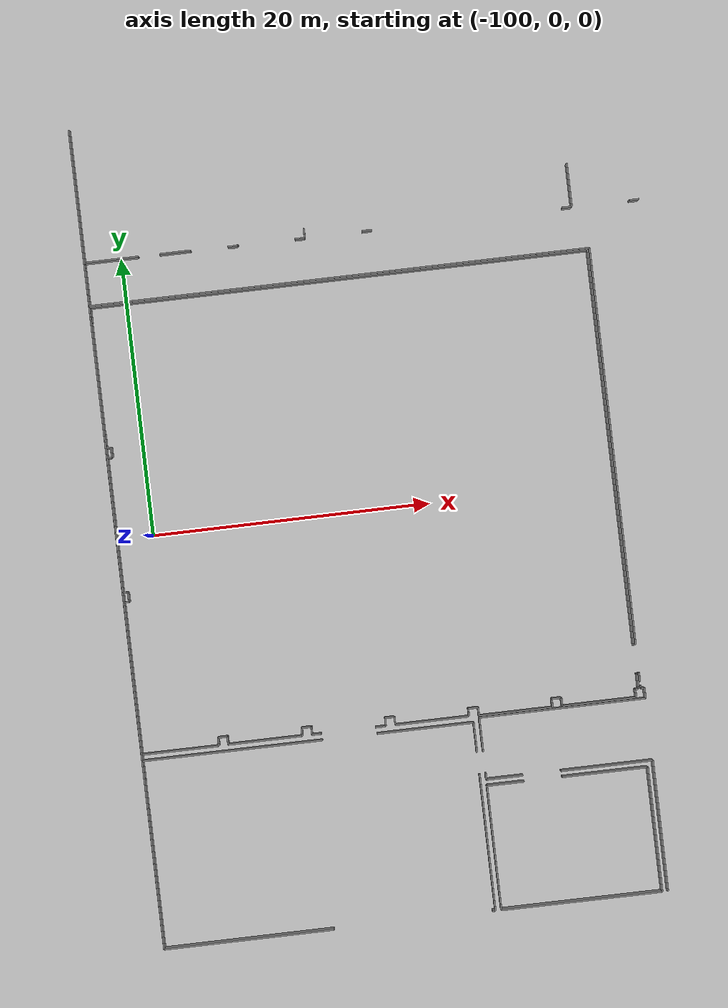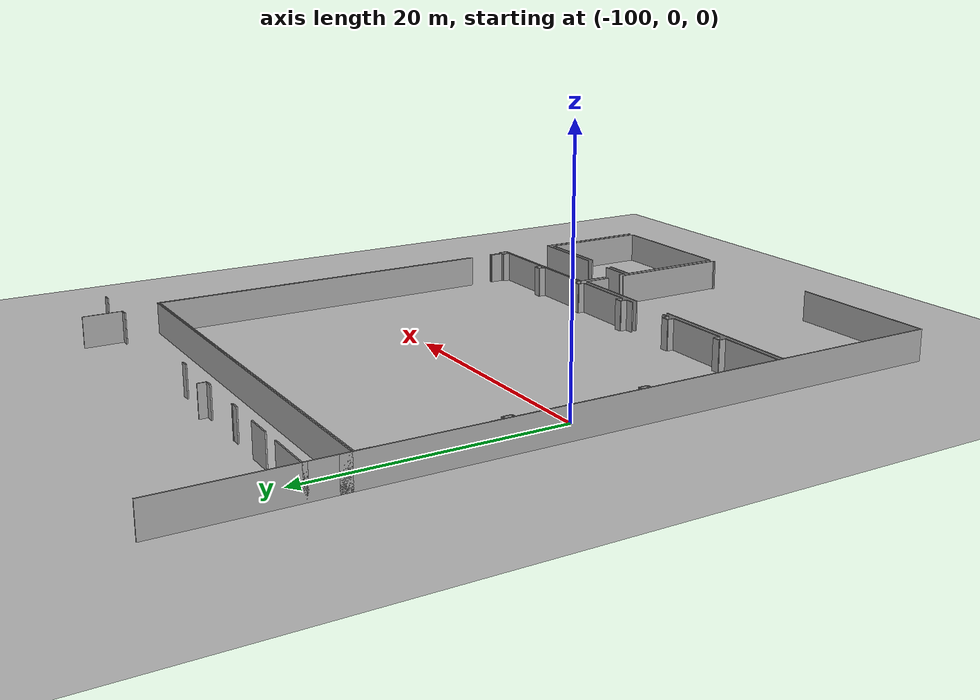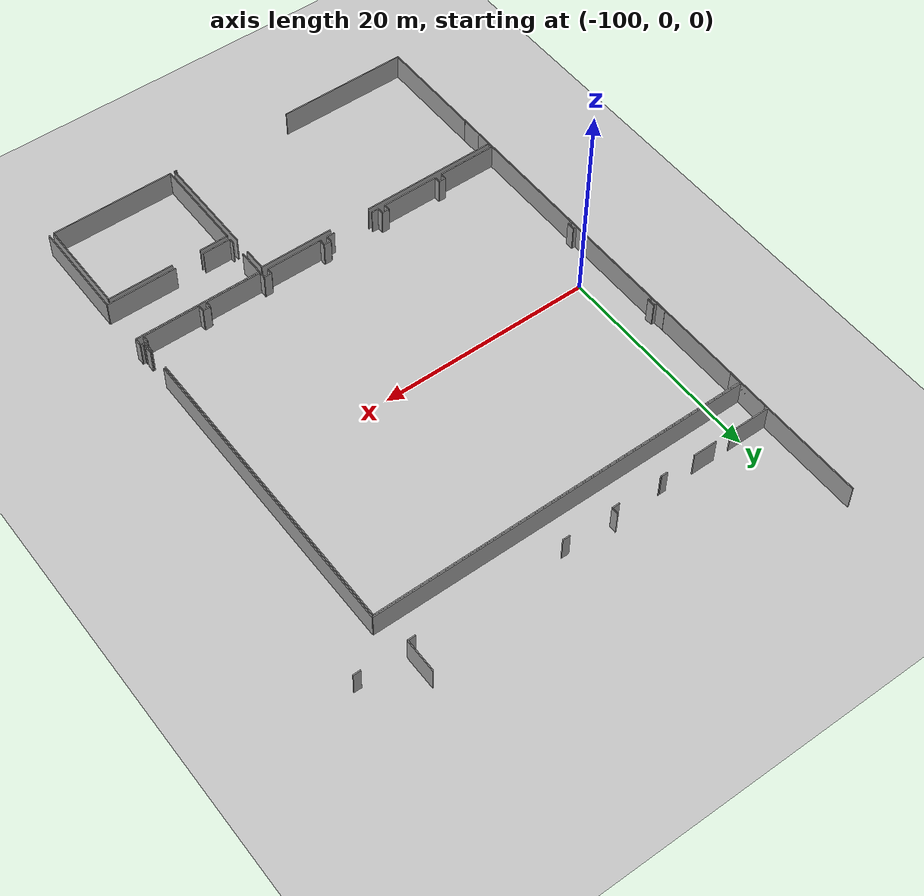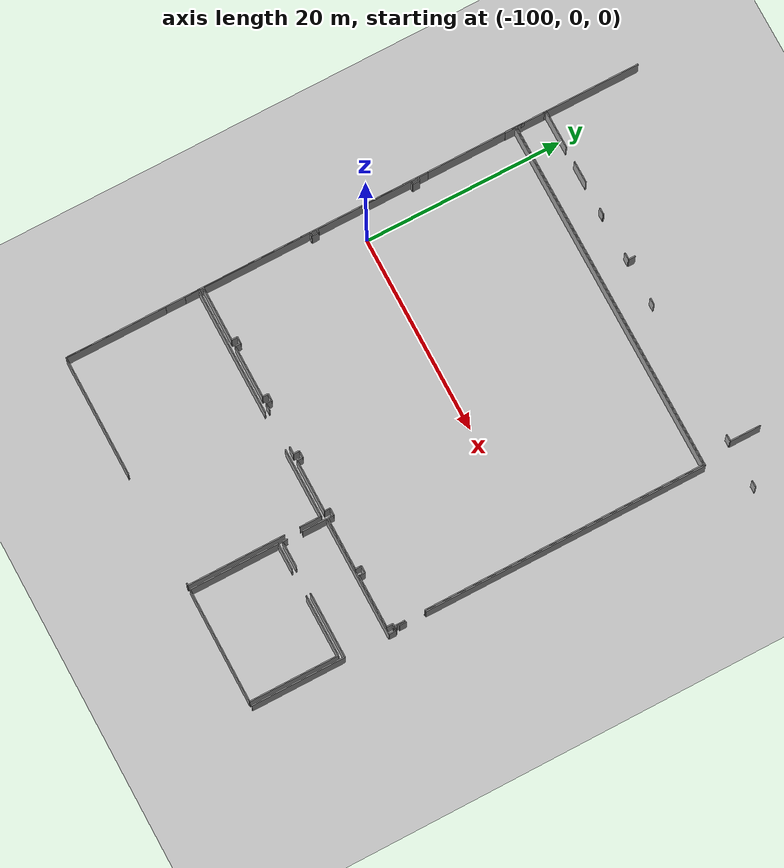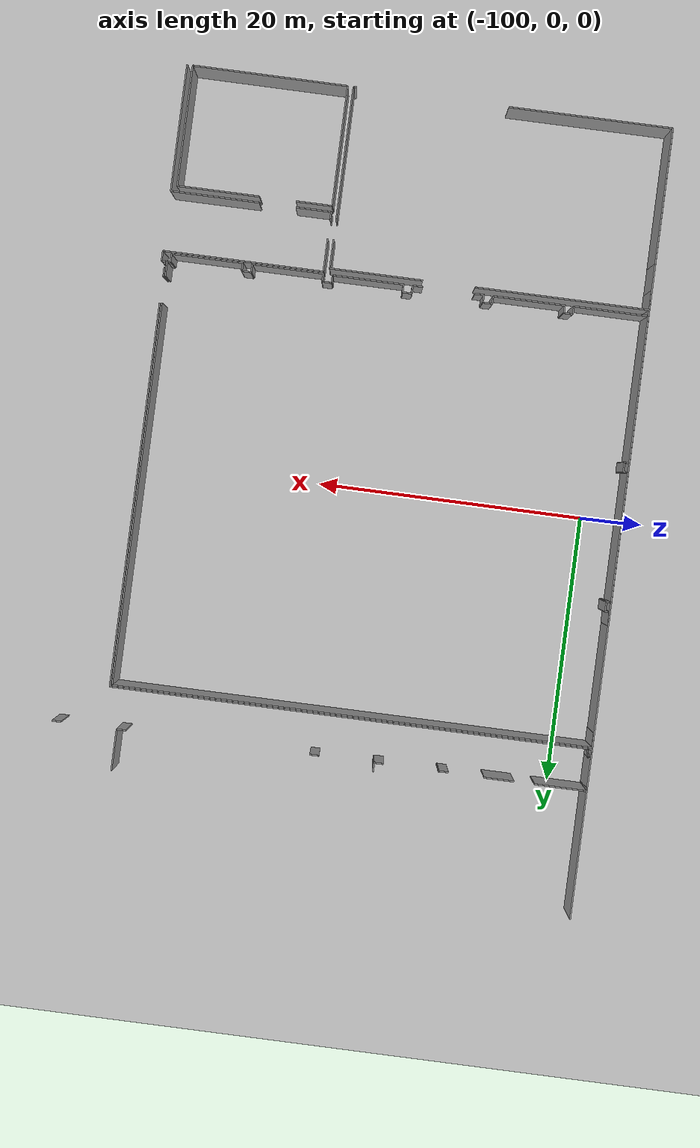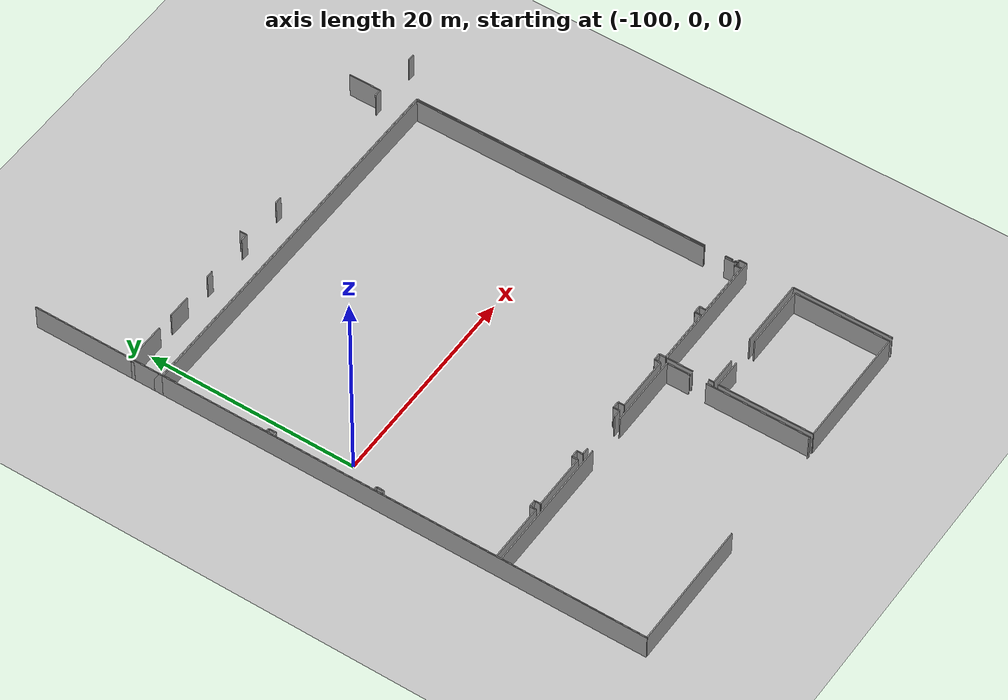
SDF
<sdf version="1.6">
 <world name="default">
  <model name="ground_plane">
   <static>1</static>
   <link name="link">
    <collision name="collision">
     <geometry><plane><normal>0 0 1</normal><size>100 100</size></plane></geometry>
     <surface><friction><ode><mu>100</mu><mu2>50</mu2></ode></friction></surface>
    </collision>
    <visual name="visual">
     <cast_shadows>0</cast_shadows>
     <geometry><plane><normal>0 0 1</normal><size>100 100</size></plane></geometry>
     <material>
      <script><uri>file://media/materials/scripts/gazebo.material</uri><name>Gazebo/Grey</name></script>
     </material>
    </visual>
   </link>
  </model>
  <model name="50010535_PLAN1">
   <static>1</static>
   <link name="Wall_73">
    <collision name="Wall_73_Collision">
     <geometry><box><size>0.842931837386 0.1 2.5</size></box></geometry>
     <pose>0.421465918693 0 1.25 0 0 0</pose>
    </collision>
    <visual name="Wall_73_Visual">
     <pose>0.421465918693 0 1.25 0 0 0</pose>
     <geometry><box><size>0.842931837386 0.1 2.5</size></box></geometry>
     <material>
      <script><uri>file://media/materials/scripts/gazebo.material</uri><name>Gazebo/Grey</name></script>
      <ambient>1 1 1 1</ambient>
     </material>
    </visual>
    <pose>0.0 -12.6818421504 0 0 0 1.57079632679</pose>
   </link>
   <link name="Wall_74">
    <collision name="Wall_74_Collision">
     <geometry><box><size>0.332903438943 0.1 2.5</size></box></geometry>
     <pose>0.166451719472 0 1.25 0 0 0</pose>
    </collision>
    <visual name="Wall_74_Visual">
     <pose>0.166451719472 0 1.25 0 0 0</pose>
     <geometry><box><size>0.332903438943 0.1 2.5</size></box></geometry>
     <material>
      <script><uri>file://media/materials/scripts/gazebo.material</uri><name>Gazebo/Grey</name></script>
      <ambient>1 1 1 1</ambient>
     </material>
    </visual>
    <pose>0.0 -9.90146312332 0 0 0 1.57079632679</pose>
   </link>
   <link name="Wall_75">
    <collision name="Wall_75_Collision">
     <geometry><box><size>3.89014186515 0.1 2.5</size></box></geometry>
     <pose>1.94507093257 0 1.25 0 0 0</pose>
    </collision>
    <visual name="Wall_75_Visual">
     <pose>1.94507093257 0 1.25 0 0 0</pose>
     <geometry><box><size>3.89014186515 0.1 2.5</size></box></geometry>
     <material>
      <script><uri>file://media/materials/scripts/gazebo.material</uri><name>Gazebo/Grey</name></script>
      <ambient>1 1 1 1</ambient>
     </material>
    </visual>
    <pose>0.0 -9.56855968438 0 0 0 0.0</pose>
   </link>
   <link name="Wall_76">
    <collision name="Wall_76_Collision">
     <geometry><box><size>2.23858503332 0.1 2.5</size></box></geometry>
     <pose>1.11929251666 0 1.25 0 0 0</pose>
    </collision>
    <visual name="Wall_76_Visual">
     <pose>1.11929251666 0 1.25 0 0 0</pose>
     <geometry><box><size>2.23858503332 0.1 2.5</size></box></geometry>
     <material>
      <script><uri>file://media/materials/scripts/gazebo.material</uri><name>Gazebo/Grey</name></script>
      <ambient>1 1 1 1</ambient>
     </material>
    </visual>
    <pose>5.4187023119 -9.56855968438 0 0 0 0.0</pose>
   </link>
   <link name="Wall_79">
    <collision name="Wall_79_Collision">
     <geometry><box><size>0.702909093219 0.1 2.5</size></box></geometry>
     <pose>0.35145454661 0 1.25 0 0 0</pose>
    </collision>
    <visual name="Wall_79_Visual">
     <pose>0.35145454661 0 1.25 0 0 0</pose>
     <geometry><box><size>0.702909093219 0.1 2.5</size></box></geometry>
     <material>
      <script><uri>file://media/materials/scripts/gazebo.material</uri><name>Gazebo/Grey</name></script>
      <ambient>1 1 1 1</ambient>
     </material>
    </visual>
    <pose>10.330933972 -9.61353976735 0 0 0 0.0</pose>
   </link>
   <link name="Wall_80">
    <collision name="Wall_80_Collision">
     <geometry><box><size>0.0853859202175 0.1 2.5</size></box></geometry>
     <pose>0.0426929601088 0 1.25 0 0 0</pose>
    </collision>
    <visual name="Wall_80_Visual">
     <pose>0.0426929601088 0 1.25 0 0 0</pose>
     <geometry><box><size>0.0853859202175 0.1 2.5</size></box></geometry>
     <material>
      <script><uri>file://media/materials/scripts/gazebo.material</uri><name>Gazebo/Grey</name></script>
      <ambient>1 1 1 1</ambient>
     </material>
    </visual>
    <pose>11.0338430653 -9.61353976735 0 0 0 1.57079632679</pose>
   </link>
   <link name="Wall_84">
    <collision name="Wall_84_Collision">
     <geometry><box><size>0.714344707534 0.1 2.5</size></box></geometry>
     <pose>0.357172353767 0 1.25 0 0 0</pose>
    </collision>
    <visual name="Wall_84_Visual">
     <pose>0.357172353767 0 1.25 0 0 0</pose>
     <geometry><box><size>0.714344707534 0.1 2.5</size></box></geometry>
     <material>
      <script><uri>file://media/materials/scripts/gazebo.material</uri><name>Gazebo/Grey</name></script>
      <ambient>1 1 1 1</ambient>
     </material>
    </visual>
    <pose>15.1455817233 -9.61201501877 0 0 0 0.0</pose>
   </link>
   <link name="Wall_85">
    <collision name="Wall_85_Collision">
     <geometry><box><size>0.682324987453 0.1 2.5</size></box></geometry>
     <pose>0.341162493726 0 1.25 0 0 0</pose>
    </collision>
    <visual name="Wall_85_Visual">
     <pose>0.341162493726 0 1.25 0 0 0</pose>
     <geometry><box><size>0.682324987453 0.1 2.5</size></box></geometry>
     <material>
      <script><uri>file://media/materials/scripts/gazebo.material</uri><name>Gazebo/Grey</name></script>
      <ambient>1 1 1 1</ambient>
     </material>
    </visual>
    <pose>15.8599264309 -9.61201501877 0 0 0 1.57079632679</pose>
   </link>
   <link name="Wall_93">
    <collision name="Wall_93_Collision">
     <geometry><box><size>0.707737463708 0.1 2.5</size></box></geometry>
     <pose>0.353868731854 0 1.25 0 0 0</pose>
    </collision>
    <visual name="Wall_93_Visual">
     <pose>0.353868731854 0 1.25 0 0 0</pose>
     <geometry><box><size>0.707737463708 0.1 2.5</size></box></geometry>
     <material>
      <script><uri>file://media/materials/scripts/gazebo.material</uri><name>Gazebo/Grey</name></script>
      <ambient>1 1 1 1</ambient>
     </material>
    </visual>
    <pose>19.9729357128 -9.59930878065 0 0 0 0.0</pose>
   </link>
   <link name="Wall_94">
    <collision name="Wall_94_Collision">
     <geometry><box><size>0.698334847493 0.1 2.5</size></box></geometry>
     <pose>0.349167423747 0 1.25 0 0 0</pose>
    </collision>
    <visual name="Wall_94_Visual">
     <pose>0.349167423747 0 1.25 0 0 0</pose>
     <geometry><box><size>0.698334847493 0.1 2.5</size></box></geometry>
     <material>
      <script><uri>file://media/materials/scripts/gazebo.material</uri><name>Gazebo/Grey</name></script>
      <ambient>1 1 1 1</ambient>
     </material>
    </visual>
    <pose>34.3693576361 -9.59930878065 0 0 0 0.0</pose>
   </link>
   <link name="Wall_95">
    <collision name="Wall_95_Collision">
     <geometry><box><size>3.1087082203 0.1 2.5</size></box></geometry>
     <pose>1.55435411015 0 1.25 0 0 0</pose>
    </collision>
    <visual name="Wall_95_Visual">
     <pose>1.55435411015 0 1.25 0 0 0</pose>
     <geometry><box><size>3.1087082203 0.1 2.5</size></box></geometry>
     <material>
      <script><uri>file://media/materials/scripts/gazebo.material</uri><name>Gazebo/Grey</name></script>
      <ambient>1 1 1 1</ambient>
     </material>
    </visual>
    <pose>35.0676924836 -9.59930878065 0 0 0 1.57079632679</pose>
   </link>
   <link name="Wall_102">
    <collision name="Wall_102_Collision">
     <geometry><box><size>0.685628609366 0.1 2.5</size></box></geometry>
     <pose>0.342814304683 0 1.25 0 0 0</pose>
    </collision>
    <visual name="Wall_102_Visual">
     <pose>0.342814304683 0 1.25 0 0 0</pose>
     <geometry><box><size>0.685628609366 0.1 2.5</size></box></geometry>
     <material>
      <script><uri>file://media/materials/scripts/gazebo.material</uri><name>Gazebo/Grey</name></script>
      <ambient>1 1 1 1</ambient>
     </material>
    </visual>
    <pose>39.2040812437 -9.62446713214 0 0 0 0.0</pose>
   </link>
   <link name="Wall_116">
    <collision name="Wall_116_Collision">
     <geometry><box><size>0.695285350343 0.1 2.5</size></box></geometry>
     <pose>0.347642675171 0 1.25 0 0 0</pose>
    </collision>
    <visual name="Wall_116_Visual">
     <pose>0.347642675171 0 1.25 0 0 0</pose>
     <geometry><box><size>0.695285350343 0.1 2.5</size></box></geometry>
     <material>
      <script><uri>file://media/materials/scripts/gazebo.material</uri><name>Gazebo/Grey</name></script>
      <ambient>1 1 1 1</ambient>
     </material>
    </visual>
    <pose>35.9784756326 -43.9414750672 0 0 0 1.57079632679</pose>
   </link>
   <link name="Wall_117">
    <collision name="Wall_117_Collision">
     <geometry><box><size>28.5745506757 0.1 2.5</size></box></geometry>
     <pose>14.2872753378 0 1.25 0 0 0</pose>
    </collision>
    <visual name="Wall_117_Visual">
     <pose>14.2872753378 0 1.25 0 0 0</pose>
     <geometry><box><size>28.5745506757 0.1 2.5</size></box></geometry>
     <material>
      <script><uri>file://media/materials/scripts/gazebo.material</uri><name>Gazebo/Grey</name></script>
      <ambient>1 1 1 1</ambient>
     </material>
    </visual>
    <pose>35.9784756326 -41.2518185803 0 0 0 1.57079632679</pose>
   </link>
   <link name="Wall_118">
    <collision name="Wall_118_Collision">
     <geometry><box><size>35.9784759234 0.1 2.5</size></box></geometry>
     <pose>17.9892379617 0 1.25 0 0 0</pose>
    </collision>
    <visual name="Wall_118_Visual">
     <pose>17.9892379617 0 1.25 0 0 0</pose>
     <geometry><box><size>35.9784759234 0.1 2.5</size></box></geometry>
     <material>
      <script><uri>file://media/materials/scripts/gazebo.material</uri><name>Gazebo/Grey</name></script>
      <ambient>1 1 1 1</ambient>
     </material>
    </visual>
    <pose>35.9784756326 -12.6772679047 0 0 0 -3.14146551519</pose>
   </link>
   <link name="Wall_119">
    <collision name="Wall_119_Collision">
     <geometry><box><size>10.9456617726 0.1 2.5</size></box></geometry>
     <pose>5.47283088632 0 1.25 0 0 0</pose>
    </collision>
    <visual name="Wall_119_Visual">
     <pose>5.47283088632 0 1.25 0 0 0</pose>
     <geometry><box><size>10.9456617726 0.1 2.5</size></box></geometry>
     <material>
      <script><uri>file://media/materials/scripts/gazebo.material</uri><name>Gazebo/Grey</name></script>
      <ambient>1 1 1 1</ambient>
     </material>
    </visual>
    <pose>0.0152474857531 -44.9716968546 0 0 0 1.57079632679</pose>
   </link>
   <link name="Wall_120">
    <collision name="Wall_120_Collision">
     <geometry><box><size>0.356282917098 0.1 2.5</size></box></geometry>
     <pose>0.178141458549 0 1.25 0 0 0</pose>
    </collision>
    <visual name="Wall_120_Visual">
     <pose>0.178141458549 0 1.25 0 0 0</pose>
     <geometry><box><size>0.356282917098 0.1 2.5</size></box></geometry>
     <material>
      <script><uri>file://media/materials/scripts/gazebo.material</uri><name>Gazebo/Grey</name></script>
      <ambient>1 1 1 1</ambient>
     </material>
    </visual>
    <pose>0.0152474857531 -34.0260350819 0 0 0 0.0</pose>
   </link>
   <link name="Wall_121">
    <collision name="Wall_121_Collision">
     <geometry><box><size>0.706466839895 0.1 2.5</size></box></geometry>
     <pose>0.353233419948 0 1.25 0 0 0</pose>
    </collision>
    <visual name="Wall_121_Visual">
     <pose>0.353233419948 0 1.25 0 0 0</pose>
     <geometry><box><size>0.706466839895 0.1 2.5</size></box></geometry>
     <material>
      <script><uri>file://media/materials/scripts/gazebo.material</uri><name>Gazebo/Grey</name></script>
      <ambient>1 1 1 1</ambient>
     </material>
    </visual>
    <pose>0.371530402851 -34.0260350819 0 0 0 1.57079632679</pose>
   </link>
   <link name="Wall_122">
    <collision name="Wall_122_Collision">
     <geometry><box><size>0.355012293285 0.1 2.5</size></box></geometry>
     <pose>0.177506146643 0 1.25 0 0 0</pose>
    </collision>
    <visual name="Wall_122_Visual">
     <pose>0.177506146643 0 1.25 0 0 0</pose>
     <geometry><box><size>0.355012293285 0.1 2.5</size></box></geometry>
     <material>
      <script><uri>file://media/materials/scripts/gazebo.material</uri><name>Gazebo/Grey</name></script>
      <ambient>1 1 1 1</ambient>
     </material>
    </visual>
    <pose>0.371530402851 -33.319568242 0 0 0 3.14159265359</pose>
   </link>
   <link name="Wall_123">
    <collision name="Wall_123_Collision">
     <geometry><box><size>9.69358906755 0.1 2.5</size></box></geometry>
     <pose>4.84679453378 0 1.25 0 0 0</pose>
    </collision>
    <visual name="Wall_123_Visual">
     <pose>4.84679453378 0 1.25 0 0 0</pose>
     <geometry><box><size>9.69358906755 0.1 2.5</size></box></geometry>
     <material>
      <script><uri>file://media/materials/scripts/gazebo.material</uri><name>Gazebo/Grey</name></script>
      <ambient>1 1 1 1</ambient>
     </material>
    </visual>
    <pose>0.0165181095659 -33.319568242 0 0 0 1.57079632679</pose>
   </link>
   <link name="Wall_124">
    <collision name="Wall_124_Collision">
     <geometry><box><size>0.350946297085 0.1 2.5</size></box></geometry>
     <pose>0.175473148542 0 1.25 0 0 0</pose>
    </collision>
    <visual name="Wall_124_Visual">
     <pose>0.175473148542 0 1.25 0 0 0</pose>
     <geometry><box><size>0.350946297085 0.1 2.5</size></box></geometry>
     <material>
      <script><uri>file://media/materials/scripts/gazebo.material</uri><name>Gazebo/Grey</name></script>
      <ambient>1 1 1 1</ambient>
     </material>
    </visual>
    <pose>0.0165181095659 -23.6259791745 0 0 0 0.0</pose>
   </link>
   <link name="Wall_125">
    <collision name="Wall_125_Collision">
     <geometry><box><size>0.726034446612 0.1 2.5</size></box></geometry>
     <pose>0.363017223306 0 1.25 0 0 0</pose>
    </collision>
    <visual name="Wall_125_Visual">
     <pose>0.363017223306 0 1.25 0 0 0</pose>
     <geometry><box><size>0.726034446612 0.1 2.5</size></box></geometry>
     <material>
      <script><uri>file://media/materials/scripts/gazebo.material</uri><name>Gazebo/Grey</name></script>
      <ambient>1 1 1 1</ambient>
     </material>
    </visual>
    <pose>0.36746440665 -23.6259791745 0 0 0 1.57079632679</pose>
   </link>
   <link name="Wall_126">
    <collision name="Wall_126_Collision">
     <geometry><box><size>0.340273057057 0.1 2.5</size></box></geometry>
     <pose>0.170136528529 0 1.25 0 0 0</pose>
    </collision>
    <visual name="Wall_126_Visual">
     <pose>0.170136528529 0 1.25 0 0 0</pose>
     <geometry><box><size>0.340273057057 0.1 2.5</size></box></geometry>
     <material>
      <script><uri>file://media/materials/scripts/gazebo.material</uri><name>Gazebo/Grey</name></script>
      <ambient>1 1 1 1</ambient>
     </material>
    </visual>
    <pose>0.36746440665 -22.8999447279 0 0 0 3.14159265359</pose>
   </link>
   <link name="Wall_127">
    <collision name="Wall_127_Collision">
     <geometry><box><size>1.00912943209 0.1 2.5</size></box></geometry>
     <pose>0.504564716047 0 1.25 0 0 0</pose>
    </collision>
    <visual name="Wall_127_Visual">
     <pose>0.504564716047 0 1.25 0 0 0</pose>
     <geometry><box><size>1.00912943209 0.1 2.5</size></box></geometry>
     <material>
      <script><uri>file://media/materials/scripts/gazebo.material</uri><name>Gazebo/Grey</name></script>
      <ambient>1 1 1 1</ambient>
     </material>
    </visual>
    <pose>0.0271913495931 -22.8999447279 0 0 0 1.57079632679</pose>
   </link>
   <link name="Wall_128">
    <collision name="Wall_128_Collision">
     <geometry><box><size>1.09222822945 0.1 2.5</size></box></geometry>
     <pose>0.546114114725 0 1.25 0 0 0</pose>
    </collision>
    <visual name="Wall_128_Visual">
     <pose>0.546114114725 0 1.25 0 0 0</pose>
     <geometry><box><size>1.09222822945 0.1 2.5</size></box></geometry>
     <material>
      <script><uri>file://media/materials/scripts/gazebo.material</uri><name>Gazebo/Grey</name></script>
      <ambient>1 1 1 1</ambient>
     </material>
    </visual>
    <pose>0.0271913495931 -13.8820734039 0 0 0 1.57079632679</pose>
   </link>
   <link name="Wall_129">
    <collision name="Wall_129_Collision">
     <geometry><box><size>35.8077037922 0.1 2.5</size></box></geometry>
     <pose>17.9038518961 0 1.25 0 0 0</pose>
    </collision>
    <visual name="Wall_129_Visual">
     <pose>17.9038518961 0 1.25 0 0 0</pose>
     <geometry><box><size>35.8077037922 0.1 2.5</size></box></geometry>
     <material>
      <script><uri>file://media/materials/scripts/gazebo.material</uri><name>Gazebo/Grey</name></script>
      <ambient>1 1 1 1</ambient>
     </material>
    </visual>
    <pose>0.0271913495931 -12.7898451745 0 0 0 0.0</pose>
   </link>
   <link name="Wall_130">
    <collision name="Wall_130_Collision">
     <geometry><box><size>28.5072076136 0.1 2.5</size></box></geometry>
     <pose>14.2536038068 0 1.25 0 0 0</pose>
    </collision>
    <visual name="Wall_130_Visual">
     <pose>14.2536038068 0 1.25 0 0 0</pose>
     <geometry><box><size>28.5072076136 0.1 2.5</size></box></geometry>
     <material>
      <script><uri>file://media/materials/scripts/gazebo.material</uri><name>Gazebo/Grey</name></script>
      <ambient>1 1 1 1</ambient>
     </material>
    </visual>
    <pose>35.8348951418 -12.7898451745 0 0 0 -1.57079632679</pose>
   </link>
   <link name="Wall_131">
    <collision name="Wall_131_Collision">
     <geometry><box><size>1.1074757152 0.1 2.5</size></box></geometry>
     <pose>0.553737857601 0 1.25 0 0 0</pose>
    </collision>
    <visual name="Wall_131_Visual">
     <pose>0.553737857601 0 1.25 0 0 0</pose>
     <geometry><box><size>1.1074757152 0.1 2.5</size></box></geometry>
     <material>
      <script><uri>file://media/materials/scripts/gazebo.material</uri><name>Gazebo/Grey</name></script>
      <ambient>1 1 1 1</ambient>
     </material>
    </visual>
    <pose>35.8348951418 -43.2817671836 0 0 0 -1.57079632679</pose>
   </link>
   <link name="Wall_132">
    <collision name="Wall_132_Collision">
     <geometry><box><size>0.251075265402 0.1 2.5</size></box></geometry>
     <pose>0.125537632701 0 1.25 0 0 0</pose>
    </collision>
    <visual name="Wall_132_Visual">
     <pose>0.125537632701 0 1.25 0 0 0</pose>
     <geometry><box><size>0.251075265402 0.1 2.5</size></box></geometry>
     <material>
      <script><uri>file://media/materials/scripts/gazebo.material</uri><name>Gazebo/Grey</name></script>
      <ambient>1 1 1 1</ambient>
     </material>
    </visual>
    <pose>35.8348951418 -44.3892428988 0 0 0 3.14159265359</pose>
   </link>
   <link name="Wall_133">
    <collision name="Wall_133_Collision">
     <geometry><box><size>0.613711301563 0.1 2.5</size></box></geometry>
     <pose>0.306855650782 0 1.25 0 0 0</pose>
    </collision>
    <visual name="Wall_133_Visual">
     <pose>0.306855650782 0 1.25 0 0 0</pose>
     <geometry><box><size>0.613711301563 0.1 2.5</size></box></geometry>
     <material>
      <script><uri>file://media/materials/scripts/gazebo.material</uri><name>Gazebo/Grey</name></script>
      <ambient>1 1 1 1</ambient>
     </material>
    </visual>
    <pose>35.5838198764 -44.3892428988 0 0 0 -1.57079632679</pose>
   </link>
   <link name="Wall_134">
    <collision name="Wall_134_Collision">
     <geometry><box><size>5.31806890593 0.1 2.5</size></box></geometry>
     <pose>2.65903445296 0 1.25 0 0 0</pose>
    </collision>
    <visual name="Wall_134_Visual">
     <pose>2.65903445296 0 1.25 0 0 0</pose>
     <geometry><box><size>5.31806890593 0.1 2.5</size></box></geometry>
     <material>
      <script><uri>file://media/materials/scripts/gazebo.material</uri><name>Gazebo/Grey</name></script>
      <ambient>1 1 1 1</ambient>
     </material>
    </visual>
    <pose>35.5838198764 -45.0029542004 0 0 0 3.14159265359</pose>
   </link>
   <link name="Wall_135">
    <collision name="Wall_135_Collision">
     <geometry><box><size>0.606849932975 0.1 2.5</size></box></geometry>
     <pose>0.303424966487 0 1.25 0 0 0</pose>
    </collision>
    <visual name="Wall_135_Visual">
     <pose>0.303424966487 0 1.25 0 0 0</pose>
     <geometry><box><size>0.606849932975 0.1 2.5</size></box></geometry>
     <material>
      <script><uri>file://media/materials/scripts/gazebo.material</uri><name>Gazebo/Grey</name></script>
      <ambient>1 1 1 1</ambient>
     </material>
    </visual>
    <pose>30.2657509704 -45.0029542004 0 0 0 1.57079632679</pose>
   </link>
   <link name="Wall_136">
    <collision name="Wall_136_Collision">
     <geometry><box><size>0.693506477005 0.1 2.5</size></box></geometry>
     <pose>0.346753238502 0 1.25 0 0 0</pose>
    </collision>
    <visual name="Wall_136_Visual">
     <pose>0.346753238502 0 1.25 0 0 0</pose>
     <geometry><box><size>0.693506477005 0.1 2.5</size></box></geometry>
     <material>
      <script><uri>file://media/materials/scripts/gazebo.material</uri><name>Gazebo/Grey</name></script>
      <ambient>1 1 1 1</ambient>
     </material>
    </visual>
    <pose>30.2657509704 -44.3961042674 0 0 0 3.14159265359</pose>
   </link>
   <link name="Wall_137">
    <collision name="Wall_137_Collision">
     <geometry><box><size>0.608120556787 0.1 2.5</size></box></geometry>
     <pose>0.304060278394 0 1.25 0 0 0</pose>
    </collision>
    <visual name="Wall_137_Visual">
     <pose>0.304060278394 0 1.25 0 0 0</pose>
     <geometry><box><size>0.608120556787 0.1 2.5</size></box></geometry>
     <material>
      <script><uri>file://media/materials/scripts/gazebo.material</uri><name>Gazebo/Grey</name></script>
      <ambient>1 1 1 1</ambient>
     </material>
    </visual>
    <pose>29.5722444934 -44.3961042674 0 0 0 -1.57079632679</pose>
   </link>
   <link name="Wall_138">
    <collision name="Wall_138_Collision">
     <geometry><box><size>5.29951779826 0.1 2.5</size></box></geometry>
     <pose>2.64975889913 0 1.25 0 0 0</pose>
    </collision>
    <visual name="Wall_138_Visual">
     <pose>2.64975889913 0 1.25 0 0 0</pose>
     <geometry><box><size>5.29951779826 0.1 2.5</size></box></geometry>
     <material>
      <script><uri>file://media/materials/scripts/gazebo.material</uri><name>Gazebo/Grey</name></script>
      <ambient>1 1 1 1</ambient>
     </material>
    </visual>
    <pose>29.5722444934 -45.0042248242 0 0 0 3.14159265359</pose>
   </link>
   <link name="Wall_139">
    <collision name="Wall_139_Collision">
     <geometry><box><size>0.604562810112 0.1 2.5</size></box></geometry>
     <pose>0.302281405056 0 1.25 0 0 0</pose>
    </collision>
    <visual name="Wall_139_Visual">
     <pose>0.302281405056 0 1.25 0 0 0</pose>
     <geometry><box><size>0.604562810112 0.1 2.5</size></box></geometry>
     <material>
      <script><uri>file://media/materials/scripts/gazebo.material</uri><name>Gazebo/Grey</name></script>
      <ambient>1 1 1 1</ambient>
     </material>
    </visual>
    <pose>24.2727266952 -45.0042248242 0 0 0 1.57079632679</pose>
   </link>
   <link name="Wall_140">
    <collision name="Wall_140_Collision">
     <geometry><box><size>0.705704465607 0.1 2.5</size></box></geometry>
     <pose>0.352852232804 0 1.25 0 0 0</pose>
    </collision>
    <visual name="Wall_140_Visual">
     <pose>0.352852232804 0 1.25 0 0 0</pose>
     <geometry><box><size>0.705704465607 0.1 2.5</size></box></geometry>
     <material>
      <script><uri>file://media/materials/scripts/gazebo.material</uri><name>Gazebo/Grey</name></script>
      <ambient>1 1 1 1</ambient>
     </material>
    </visual>
    <pose>24.2727266952 -44.3996620141 0 0 0 3.14159265359</pose>
   </link>
   <link name="Wall_141">
    <collision name="Wall_141_Collision">
     <geometry><box><size>0.555770855702 0.1 2.5</size></box></geometry>
     <pose>0.277885427851 0 1.25 0 0 0</pose>
    </collision>
    <visual name="Wall_141_Visual">
     <pose>0.277885427851 0 1.25 0 0 0</pose>
     <geometry><box><size>0.555770855702 0.1 2.5</size></box></geometry>
     <material>
      <script><uri>file://media/materials/scripts/gazebo.material</uri><name>Gazebo/Grey</name></script>
      <ambient>1 1 1 1</ambient>
     </material>
    </visual>
    <pose>23.5670222296 -44.3996620141 0 0 0 -1.57079632679</pose>
   </link>
   <link name="Wall_142">
    <collision name="Wall_142_Collision">
     <geometry><box><size>5.30561679256 0.1 2.5</size></box></geometry>
     <pose>2.65280839628 0 1.25 0 0 0</pose>
    </collision>
    <visual name="Wall_142_Visual">
     <pose>2.65280839628 0 1.25 0 0 0</pose>
     <geometry><box><size>5.30561679256 0.1 2.5</size></box></geometry>
     <material>
      <script><uri>file://media/materials/scripts/gazebo.material</uri><name>Gazebo/Grey</name></script>
      <ambient>1 1 1 1</ambient>
     </material>
    </visual>
    <pose>23.5670222296 -44.9554328698 0 0 0 3.14159265359</pose>
   </link>
   <link name="Wall_143">
    <collision name="Wall_143_Collision">
     <geometry><box><size>0.578133834806 0.1 2.5</size></box></geometry>
     <pose>0.289066917403 0 1.25 0 0 0</pose>
    </collision>
    <visual name="Wall_143_Visual">
     <pose>0.289066917403 0 1.25 0 0 0</pose>
     <geometry><box><size>0.578133834806 0.1 2.5</size></box></geometry>
     <material>
      <script><uri>file://media/materials/scripts/gazebo.material</uri><name>Gazebo/Grey</name></script>
      <ambient>1 1 1 1</ambient>
     </material>
    </visual>
    <pose>18.261405437 -44.9554328698 0 0 0 1.57079632679</pose>
   </link>
   <link name="Wall_144">
    <collision name="Wall_144_Collision">
     <geometry><box><size>0.682579112215 0.1 2.5</size></box></geometry>
     <pose>0.341289556108 0 1.25 0 0 0</pose>
    </collision>
    <visual name="Wall_144_Visual">
     <pose>0.341289556108 0 1.25 0 0 0</pose>
     <geometry><box><size>0.682579112215 0.1 2.5</size></box></geometry>
     <material>
      <script><uri>file://media/materials/scripts/gazebo.material</uri><name>Gazebo/Grey</name></script>
      <ambient>1 1 1 1</ambient>
     </material>
    </visual>
    <pose>18.261405437 -44.377299035 0 0 0 3.14159265359</pose>
   </link>
   <link name="Wall_145">
    <collision name="Wall_145_Collision">
     <geometry><box><size>0.585249328158 0.1 2.5</size></box></geometry>
     <pose>0.292624664079 0 1.25 0 0 0</pose>
    </collision>
    <visual name="Wall_145_Visual">
     <pose>0.292624664079 0 1.25 0 0 0</pose>
     <geometry><box><size>0.585249328158 0.1 2.5</size></box></geometry>
     <material>
      <script><uri>file://media/materials/scripts/gazebo.material</uri><name>Gazebo/Grey</name></script>
      <ambient>1 1 1 1</ambient>
     </material>
    </visual>
    <pose>17.5788263248 -44.377299035 0 0 0 -1.57079632679</pose>
   </link>
   <link name="Wall_146">
    <collision name="Wall_146_Collision">
     <geometry><box><size>0.750430423817 0.1 2.5</size></box></geometry>
     <pose>0.375215211908 0 1.25 0 0 0</pose>
    </collision>
    <visual name="Wall_146_Visual">
     <pose>0.375215211908 0 1.25 0 0 0</pose>
     <geometry><box><size>0.750430423817 0.1 2.5</size></box></geometry>
     <material>
      <script><uri>file://media/materials/scripts/gazebo.material</uri><name>Gazebo/Grey</name></script>
      <ambient>1 1 1 1</ambient>
     </material>
    </visual>
    <pose>17.5788263248 -44.9625483631 0 0 0 3.14159265359</pose>
   </link>
   <link name="Wall_147">
    <collision name="Wall_147_Collision">
     <geometry><box><size>0.6691104998 0.1 2.5</size></box></geometry>
     <pose>0.3345552499 0 1.25 0 0 0</pose>
    </collision>
    <visual name="Wall_147_Visual">
     <pose>0.3345552499 0 1.25 0 0 0</pose>
     <geometry><box><size>0.6691104998 0.1 2.5</size></box></geometry>
     <material>
      <script><uri>file://media/materials/scripts/gazebo.material</uri><name>Gazebo/Grey</name></script>
      <ambient>1 1 1 1</ambient>
     </material>
    </visual>
    <pose>12.9400329092 -44.9625483631 0 0 0 3.14159265359</pose>
   </link>
   <link name="Wall_148">
    <collision name="Wall_148_Collision">
     <geometry><box><size>0.565681721441 0.1 2.5</size></box></geometry>
     <pose>0.282840860721 0 1.25 0 0 0</pose>
    </collision>
    <visual name="Wall_148_Visual">
     <pose>0.282840860721 0 1.25 0 0 0</pose>
     <geometry><box><size>0.565681721441 0.1 2.5</size></box></geometry>
     <material>
      <script><uri>file://media/materials/scripts/gazebo.material</uri><name>Gazebo/Grey</name></script>
      <ambient>1 1 1 1</ambient>
     </material>
    </visual>
    <pose>12.2709224094 -44.9625483631 0 0 0 1.57079632679</pose>
   </link>
   <link name="Wall_149">
    <collision name="Wall_149_Collision">
     <geometry><box><size>0.698080722731 0.1 2.5</size></box></geometry>
     <pose>0.349040361365 0 1.25 0 0 0</pose>
    </collision>
    <visual name="Wall_149_Visual">
     <pose>0.349040361365 0 1.25 0 0 0</pose>
     <geometry><box><size>0.698080722731 0.1 2.5</size></box></geometry>
     <material>
      <script><uri>file://media/materials/scripts/gazebo.material</uri><name>Gazebo/Grey</name></script>
      <ambient>1 1 1 1</ambient>
     </material>
    </visual>
    <pose>12.2709224094 -44.3968666417 0 0 0 3.14159265359</pose>
   </link>
   <link name="Wall_150">
    <collision name="Wall_150_Collision">
     <geometry><box><size>0.565935846204 0.1 2.5</size></box></geometry>
     <pose>0.282967923102 0 1.25 0 0 0</pose>
    </collision>
    <visual name="Wall_150_Visual">
     <pose>0.282967923102 0 1.25 0 0 0</pose>
     <geometry><box><size>0.565935846204 0.1 2.5</size></box></geometry>
     <material>
      <script><uri>file://media/materials/scripts/gazebo.material</uri><name>Gazebo/Grey</name></script>
      <ambient>1 1 1 1</ambient>
     </material>
    </visual>
    <pose>11.5728416866 -44.3968666417 0 0 0 -1.57079632679</pose>
   </link>
   <link name="Wall_151">
    <collision name="Wall_151_Collision">
     <geometry><box><size>5.33636588883 0.1 2.5</size></box></geometry>
     <pose>2.66818294442 0 1.25 0 0 0</pose>
    </collision>
    <visual name="Wall_151_Visual">
     <pose>2.66818294442 0 1.25 0 0 0</pose>
     <geometry><box><size>5.33636588883 0.1 2.5</size></box></geometry>
     <material>
      <script><uri>file://media/materials/scripts/gazebo.material</uri><name>Gazebo/Grey</name></script>
      <ambient>1 1 1 1</ambient>
     </material>
    </visual>
    <pose>11.5728416866 -44.9628024879 0 0 0 3.14159265359</pose>
   </link>
   <link name="Wall_152">
    <collision name="Wall_152_Collision">
     <geometry><box><size>0.565935846204 0.1 2.5</size></box></geometry>
     <pose>0.282967923102 0 1.25 0 0 0</pose>
    </collision>
    <visual name="Wall_152_Visual">
     <pose>0.282967923102 0 1.25 0 0 0</pose>
     <geometry><box><size>0.565935846204 0.1 2.5</size></box></geometry>
     <material>
      <script><uri>file://media/materials/scripts/gazebo.material</uri><name>Gazebo/Grey</name></script>
      <ambient>1 1 1 1</ambient>
     </material>
    </visual>
    <pose>6.23647579779 -44.9628024879 0 0 0 1.57079632679</pose>
   </link>
   <link name="Wall_153">
    <collision name="Wall_153_Collision">
     <geometry><box><size>0.6691104998 0.1 2.5</size></box></geometry>
     <pose>0.3345552499 0 1.25 0 0 0</pose>
    </collision>
    <visual name="Wall_153_Visual">
     <pose>0.3345552499 0 1.25 0 0 0</pose>
     <geometry><box><size>0.6691104998 0.1 2.5</size></box></geometry>
     <material>
      <script><uri>file://media/materials/scripts/gazebo.material</uri><name>Gazebo/Grey</name></script>
      <ambient>1 1 1 1</ambient>
     </material>
    </visual>
    <pose>6.23647579779 -44.3968666417 0 0 0 3.14159265359</pose>
   </link>
   <link name="Wall_154">
    <collision name="Wall_154_Collision">
     <geometry><box><size>0.58651995197 0.1 2.5</size></box></geometry>
     <pose>0.293259975985 0 1.25 0 0 0</pose>
    </collision>
    <visual name="Wall_154_Visual">
     <pose>0.293259975985 0 1.25 0 0 0</pose>
     <geometry><box><size>0.58651995197 0.1 2.5</size></box></geometry>
     <material>
      <script><uri>file://media/materials/scripts/gazebo.material</uri><name>Gazebo/Grey</name></script>
      <ambient>1 1 1 1</ambient>
     </material>
    </visual>
    <pose>5.56736529799 -44.3968666417 0 0 0 -1.57079632679</pose>
   </link>
   <link name="Wall_155">
    <collision name="Wall_155_Collision">
     <geometry><box><size>5.55213011834 0.1 2.5</size></box></geometry>
     <pose>2.77606505917 0 1.25 0 0 0</pose>
    </collision>
    <visual name="Wall_155_Visual">
     <pose>2.77606505917 0 1.25 0 0 0</pose>
     <geometry><box><size>5.55213011834 0.1 2.5</size></box></geometry>
     <material>
      <script><uri>file://media/materials/scripts/gazebo.material</uri><name>Gazebo/Grey</name></script>
      <ambient>1 1 1 1</ambient>
     </material>
    </visual>
    <pose>5.56736529799 -44.9833865936 0 0 0 3.13948720082</pose>
   </link>
   <link name="Wall_156">
    <collision name="Wall_156_Collision">
     <geometry><box><size>10.1334790315 0.1 2.5</size></box></geometry>
     <pose>5.06673951577 0 1.25 0 0 0</pose>
    </collision>
    <visual name="Wall_156_Visual">
     <pose>5.06673951577 0 1.25 0 0 0</pose>
     <geometry><box><size>10.1334790315 0.1 2.5</size></box></geometry>
     <material>
      <script><uri>file://media/materials/scripts/gazebo.material</uri><name>Gazebo/Grey</name></script>
      <ambient>1 1 1 1</ambient>
     </material>
    </visual>
    <pose>0.00914849145188 -58.979562016 0 0 0 1.57079632679</pose>
   </link>
   <link name="Wall_157">
    <collision name="Wall_157_Collision">
     <geometry><box><size>1.42970591412 0.1 2.5</size></box></geometry>
     <pose>0.714852957059 0 1.25 0 0 0</pose>
    </collision>
    <visual name="Wall_157_Visual">
     <pose>0.714852957059 0 1.25 0 0 0</pose>
     <geometry><box><size>1.42970591412 0.1 2.5</size></box></geometry>
     <material>
      <script><uri>file://media/materials/scripts/gazebo.material</uri><name>Gazebo/Grey</name></script>
      <ambient>1 1 1 1</ambient>
     </material>
    </visual>
    <pose>0.00914849145188 -46.8613685889 0 0 0 1.57079632679</pose>
   </link>
   <link name="Wall_158">
    <collision name="Wall_158_Collision">
     <geometry><box><size>12.9651912606 0.1 2.5</size></box></geometry>
     <pose>6.48259563032 0 1.25 0 0 0</pose>
    </collision>
    <visual name="Wall_158_Visual">
     <pose>6.48259563032 0 1.25 0 0 0</pose>
     <geometry><box><size>12.9651912606 0.1 2.5</size></box></geometry>
     <material>
      <script><uri>file://media/materials/scripts/gazebo.material</uri><name>Gazebo/Grey</name></script>
      <ambient>1 1 1 1</ambient>
     </material>
    </visual>
    <pose>0.00914849145188 -45.4316626748 0 0 0 0.0</pose>
   </link>
   <link name="Wall_159">
    <collision name="Wall_159_Collision">
     <geometry><box><size>6.93455652052 0.1 2.5</size></box></geometry>
     <pose>3.46727826026 0 1.25 0 0 0</pose>
    </collision>
    <visual name="Wall_159_Visual">
     <pose>3.46727826026 0 1.25 0 0 0</pose>
     <geometry><box><size>6.93455652052 0.1 2.5</size></box></geometry>
     <material>
      <script><uri>file://media/materials/scripts/gazebo.material</uri><name>Gazebo/Grey</name></script>
      <ambient>1 1 1 1</ambient>
     </material>
    </visual>
    <pose>16.8959930878 -45.4316626748 0 0 0 0.0</pose>
   </link>
   <link name="Wall_160">
    <collision name="Wall_160_Collision">
     <geometry><box><size>2.17581621697 0.1 2.5</size></box></geometry>
     <pose>1.08790810849 0 1.25 0 0 0</pose>
    </collision>
    <visual name="Wall_160_Visual">
     <pose>1.08790810849 0 1.25 0 0 0</pose>
     <geometry><box><size>2.17581621697 0.1 2.5</size></box></geometry>
     <material>
      <script><uri>file://media/materials/scripts/gazebo.material</uri><name>Gazebo/Grey</name></script>
      <ambient>1 1 1 1</ambient>
     </material>
    </visual>
    <pose>23.8305496083 -45.4316626748 0 0 0 -1.57079632679</pose>
   </link>
   <link name="Wall_161">
    <collision name="Wall_161_Collision">
     <geometry><box><size>9.8201431993 0.1 2.5</size></box></geometry>
     <pose>4.91007159965 0 1.25 0 0 0</pose>
    </collision>
    <visual name="Wall_161_Visual">
     <pose>4.91007159965 0 1.25 0 0 0</pose>
     <geometry><box><size>9.8201431993 0.1 2.5</size></box></geometry>
     <material>
      <script><uri>file://media/materials/scripts/gazebo.material</uri><name>Gazebo/Grey</name></script>
      <ambient>1 1 1 1</ambient>
     </material>
    </visual>
    <pose>23.8305496083 -49.1528115728 0 0 0 -1.57079632679</pose>
   </link>
   <link name="Wall_162">
    <collision name="Wall_162_Collision">
     <geometry><box><size>0.225662789146 0.1 2.5</size></box></geometry>
     <pose>0.112831394573 0 1.25 0 0 0</pose>
    </collision>
    <visual name="Wall_162_Visual">
     <pose>0.112831394573 0 1.25 0 0 0</pose>
     <geometry><box><size>0.225662789146 0.1 2.5</size></box></geometry>
     <material>
      <script><uri>file://media/materials/scripts/gazebo.material</uri><name>Gazebo/Grey</name></script>
      <ambient>1 1 1 1</ambient>
     </material>
    </visual>
    <pose>23.8305496083 -58.9729547721 0 0 0 3.14159265359</pose>
   </link>
   <link name="Wall_163">
    <collision name="Wall_163_Collision">
     <geometry><box><size>12.2178121205 0.1 2.5</size></box></geometry>
     <pose>6.10890606027 0 1.25 0 0 0</pose>
    </collision>
    <visual name="Wall_163_Visual">
     <pose>6.10890606027 0 1.25 0 0 0</pose>
     <geometry><box><size>12.2178121205 0.1 2.5</size></box></geometry>
     <material>
      <script><uri>file://media/materials/scripts/gazebo.material</uri><name>Gazebo/Grey</name></script>
      <ambient>1 1 1 1</ambient>
     </material>
    </visual>
    <pose>12.2269588254 -58.9729547721 0 0 0 -3.14105186576</pose>
   </link>
   <link name="Wall_164">
    <collision name="Wall_164_Collision">
     <geometry><box><size>8.94214214469 0.1 2.5</size></box></geometry>
     <pose>4.47107107234 0 1.25 0 0 0</pose>
    </collision>
    <visual name="Wall_164_Visual">
     <pose>4.47107107234 0 1.25 0 0 0</pose>
     <geometry><box><size>8.94214214469 0.1 2.5</size></box></geometry>
     <material>
      <script><uri>file://media/materials/scripts/gazebo.material</uri><name>Gazebo/Grey</name></script>
      <ambient>1 1 1 1</ambient>
     </material>
    </visual>
    <pose>24.2572250847 -58.9732088969 0 0 0 1.57079632679</pose>
   </link>
   <link name="Wall_165">
    <collision name="Wall_165_Collision">
     <geometry><box><size>2.68686111446 0.1 2.5</size></box></geometry>
     <pose>1.34343055723 0 1.25 0 0 0</pose>
    </collision>
    <visual name="Wall_165_Visual">
     <pose>1.34343055723 0 1.25 0 0 0</pose>
     <geometry><box><size>2.68686111446 0.1 2.5</size></box></geometry>
     <material>
      <script><uri>file://media/materials/scripts/gazebo.material</uri><name>Gazebo/Grey</name></script>
      <ambient>1 1 1 1</ambient>
     </material>
    </visual>
    <pose>24.2572250847 -50.0310667522 0 0 0 0.0</pose>
   </link>
   <link name="Wall_166">
    <collision name="Wall_166_Collision">
     <geometry><box><size>6.15236050139 0.1 2.5</size></box></geometry>
     <pose>3.07618025069 0 1.25 0 0 0</pose>
    </collision>
    <visual name="Wall_166_Visual">
     <pose>3.07618025069 0 1.25 0 0 0</pose>
     <geometry><box><size>6.15236050139 0.1 2.5</size></box></geometry>
     <material>
      <script><uri>file://media/materials/scripts/gazebo.material</uri><name>Gazebo/Grey</name></script>
      <ambient>1 1 1 1</ambient>
     </material>
    </visual>
    <pose>29.6718614004 -50.0310667522 0 0 0 0.0</pose>
   </link>
   <link name="Wall_167">
    <collision name="Wall_167_Collision">
     <geometry><box><size>8.9657757476 0.1 2.5</size></box></geometry>
     <pose>4.4828878738 0 1.25 0 0 0</pose>
    </collision>
    <visual name="Wall_167_Visual">
     <pose>4.4828878738 0 1.25 0 0 0</pose>
     <geometry><box><size>8.9657757476 0.1 2.5</size></box></geometry>
     <material>
      <script><uri>file://media/materials/scripts/gazebo.material</uri><name>Gazebo/Grey</name></script>
      <ambient>1 1 1 1</ambient>
     </material>
    </visual>
    <pose>35.8242219017 -50.0310667522 0 0 0 -1.57079632679</pose>
   </link>
   <link name="Wall_168">
    <collision name="Wall_168_Collision">
     <geometry><box><size>11.5670209611 0.1 2.5</size></box></geometry>
     <pose>5.78351048053 0 1.25 0 0 0</pose>
    </collision>
    <visual name="Wall_168_Visual">
     <pose>5.78351048053 0 1.25 0 0 0</pose>
     <geometry><box><size>11.5670209611 0.1 2.5</size></box></geometry>
     <material>
      <script><uri>file://media/materials/scripts/gazebo.material</uri><name>Gazebo/Grey</name></script>
      <ambient>1 1 1 1</ambient>
     </material>
    </visual>
    <pose>35.8242219017 -58.9968424998 0 0 0 3.13954946378</pose>
   </link>
   <link name="Wall_179">
    <collision name="Wall_179_Collision">
     <geometry><box><size>9.41964257352 0.1 2.5</size></box></geometry>
     <pose>4.70982128676 0 1.25 0 0 0</pose>
    </collision>
    <visual name="Wall_179_Visual">
     <pose>4.70982128676 0 1.25 0 0 0</pose>
     <geometry><box><size>9.41964257352 0.1 2.5</size></box></geometry>
     <material>
      <script><uri>file://media/materials/scripts/gazebo.material</uri><name>Gazebo/Grey</name></script>
      <ambient>1 1 1 1</ambient>
     </material>
    </visual>
    <pose>36.2412406371 -59.0103111122 0 0 0 1.57079632679</pose>
   </link>
   <link name="Wall_180">
    <collision name="Wall_180_Collision">
     <geometry><box><size>6.60978507398 0.1 2.5</size></box></geometry>
     <pose>3.30489253699 0 1.25 0 0 0</pose>
    </collision>
    <visual name="Wall_180_Visual">
     <pose>3.30489253699 0 1.25 0 0 0</pose>
     <geometry><box><size>6.60978507398 0.1 2.5</size></box></geometry>
     <material>
      <script><uri>file://media/materials/scripts/gazebo.material</uri><name>Gazebo/Grey</name></script>
      <ambient>1 1 1 1</ambient>
     </material>
    </visual>
    <pose>36.2412406371 -49.5906685387 0 0 0 3.14159265359</pose>
   </link>
   <link name="Wall_181">
    <collision name="Wall_181_Collision">
     <geometry><box><size>2.63679853624 0.1 2.5</size></box></geometry>
     <pose>1.31839926812 0 1.25 0 0 0</pose>
    </collision>
    <visual name="Wall_181_Visual">
     <pose>1.31839926812 0 1.25 0 0 0</pose>
     <geometry><box><size>2.63679853624 0.1 2.5</size></box></geometry>
     <material>
      <script><uri>file://media/materials/scripts/gazebo.material</uri><name>Gazebo/Grey</name></script>
      <ambient>1 1 1 1</ambient>
     </material>
    </visual>
    <pose>26.9074922333 -49.5906685387 0 0 0 3.14159265359</pose>
   </link>
   <link name="Wall_182">
    <collision name="Wall_182_Collision">
     <geometry><box><size>0.477500428836 0.1 2.5</size></box></geometry>
     <pose>0.238750214418 0 1.25 0 0 0</pose>
    </collision>
    <visual name="Wall_182_Visual">
     <pose>0.238750214418 0 1.25 0 0 0</pose>
     <geometry><box><size>0.477500428836 0.1 2.5</size></box></geometry>
     <material>
      <script><uri>file://media/materials/scripts/gazebo.material</uri><name>Gazebo/Grey</name></script>
      <ambient>1 1 1 1</ambient>
     </material>
    </visual>
    <pose>24.2706936971 -49.5906685387 0 0 0 1.57079632679</pose>
   </link>
   <link name="Wall_183">
    <collision name="Wall_183_Collision">
     <geometry><box><size>2.45840295293 0.1 2.5</size></box></geometry>
     <pose>1.22920147646 0 1.25 0 0 0</pose>
    </collision>
    <visual name="Wall_183_Visual">
     <pose>1.22920147646 0 1.25 0 0 0</pose>
     <geometry><box><size>2.45840295293 0.1 2.5</size></box></geometry>
     <material>
      <script><uri>file://media/materials/scripts/gazebo.material</uri><name>Gazebo/Grey</name></script>
      <ambient>1 1 1 1</ambient>
     </material>
    </visual>
    <pose>24.2706936971 -47.5846076631 0 0 0 1.57079632679</pose>
   </link>
   <link name="Wall_184">
    <collision name="Wall_184_Collision">
     <geometry><box><size>11.9733423124 0.1 2.5</size></box></geometry>
     <pose>5.9866711562 0 1.25 0 0 0</pose>
    </collision>
    <visual name="Wall_184_Visual">
     <pose>5.9866711562 0 1.25 0 0 0</pose>
     <geometry><box><size>11.9733423124 0.1 2.5</size></box></geometry>
     <material>
      <script><uri>file://media/materials/scripts/gazebo.material</uri><name>Gazebo/Grey</name></script>
      <ambient>1 1 1 1</ambient>
     </material>
    </visual>
    <pose>24.2706936971 -45.1262047102 0 0 0 0.0</pose>
   </link>
   <link name="Wall_185">
    <collision name="Wall_185_Collision">
     <geometry><box><size>0.738232435214 0.1 2.5</size></box></geometry>
     <pose>0.369116217607 0 1.25 0 0 0</pose>
    </collision>
    <visual name="Wall_185_Visual">
     <pose>0.369116217607 0 1.25 0 0 0</pose>
     <geometry><box><size>0.738232435214 0.1 2.5</size></box></geometry>
     <material>
      <script><uri>file://media/materials/scripts/gazebo.material</uri><name>Gazebo/Grey</name></script>
      <ambient>1 1 1 1</ambient>
     </material>
    </visual>
    <pose>36.2440360095 -45.1262047102 0 0 0 1.57079632679</pose>
   </link>
   <link name="Wall_186">
    <collision name="Wall_186_Collision">
     <geometry><box><size>0.262256754954 0.1 2.5</size></box></geometry>
     <pose>0.131128377477 0 1.25 0 0 0</pose>
    </collision>
    <visual name="Wall_186_Visual">
     <pose>0.131128377477 0 1.25 0 0 0</pose>
     <geometry><box><size>0.262256754954 0.1 2.5</size></box></geometry>
     <material>
      <script><uri>file://media/materials/scripts/gazebo.material</uri><name>Gazebo/Grey</name></script>
      <ambient>1 1 1 1</ambient>
     </material>
    </visual>
    <pose>36.2440360095 -44.387972275 0 0 0 3.14159265359</pose>
   </link>
   <link name="Wall_187">
    <collision name="Wall_187_Collision">
     <geometry><box><size>0.220326169133 0.1 2.5</size></box></geometry>
     <pose>0.110163084566 0 1.25 0 0 0</pose>
    </collision>
    <visual name="Wall_187_Visual">
     <pose>0.110163084566 0 1.25 0 0 0</pose>
     <geometry><box><size>0.220326169133 0.1 2.5</size></box></geometry>
     <material>
      <script><uri>file://media/materials/scripts/gazebo.material</uri><name>Gazebo/Grey</name></script>
      <ambient>1 1 1 1</ambient>
     </material>
    </visual>
    <pose>35.9817792545 -44.387972275 0 0 0 1.57079632679</pose>
   </link>
   <link name="Wall_826">
    <collision name="Wall_826_Collision">
     <geometry><box><size>59.0103111122 0.1 2.5</size></box></geometry>
     <pose>29.5051555561 0 1.25 0 0 0</pose>
    </collision>
    <visual name="Wall_826_Visual">
     <pose>29.5051555561 0 1.25 0 0 0</pose>
     <geometry><box><size>59.0103111122 0.1 2.5</size></box></geometry>
     <material>
      <script><uri>file://media/materials/scripts/gazebo.material</uri><name>Gazebo/Grey</name></script>
      <ambient>1 1 1 1</ambient>
     </material>
    </visual>
    <pose>0.0 -59.0103111122 0 0 0 1.57079632679</pose>
   </link>
   <pose>-102.6 29.5103111122 0 0 0 0</pose>
  </model>
 </world>
</sdf>
